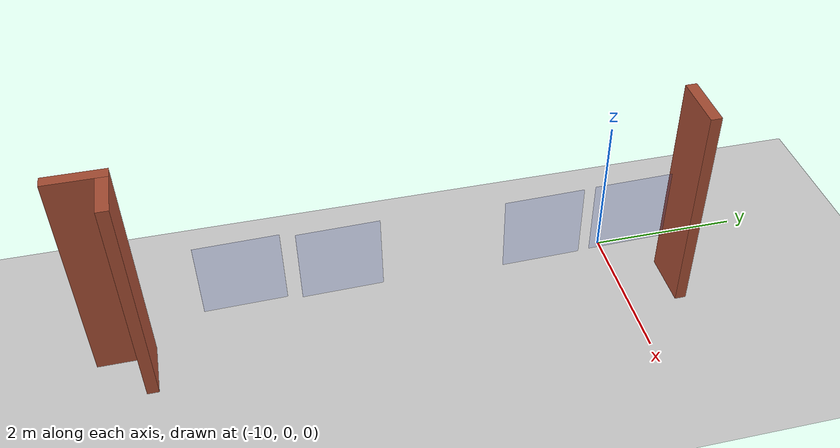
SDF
<sdf version="1.6">
 <world name="default">
  <model name="ground_plane">
   <static>1</static>
   <link name="link">
    <collision name="collision">
     <geometry><plane><normal>0 0 1</normal><size>100 100</size></plane></geometry>
     <surface><friction><ode><mu>100</mu><mu2>50</mu2></ode></friction></surface>
    </collision>
    <visual name="visual">
     <cast_shadows>0</cast_shadows>
     <geometry><plane><normal>0 0 1</normal><size>100 100</size></plane></geometry>
     <material>
      <script><uri>file://media/materials/scripts/gazebo.material</uri><name>Gazebo/Grey</name></script>
     </material>
    </visual>
   </link>
  </model>
  <model name="UNFRGS_INF_-_Predio_73">
   <pose>-0.02513 1.0401 -0.009 0 -0 0</pose>
   <link name="Wall_688">
    <collision name="Wall_688_Collision">
     <geometry><box><size>0.75 0.15 2.96</size></box></geometry>
     <pose>0 0 1.48 0 -0 0</pose>
    </collision>
    <visual name="Wall_688_Visual">
     <pose>0 0 1.48 0 -0 0</pose>
     <geometry><box><size>0.75 0.15 2.96</size></box></geometry>
     <material>
      <script><uri>file://media/materials/scripts/gazebo.material</uri><name>Gazebo/Bricks</name></script>
      <ambient>0.498039 0.498039 0.498039 1</ambient>
     </material>
     <meta><layer>0</layer></meta>
    </visual>
    <pose>-9.04913 -7.33422 0 0 -0 3.14159</pose>
   </link>
   <link name="Wall_689">
    <collision name="Wall_689_Collision">
     <geometry><box><size>0.75 0.15 2.96</size></box></geometry>
     <pose>0 0 1.48 0 -0 0</pose>
    </collision>
    <visual name="Wall_689_Visual">
     <pose>0 0 1.48 0 -0 0</pose>
     <geometry><box><size>0.75 0.15 2.96</size></box></geometry>
     <material>
      <script><uri>file://media/materials/scripts/gazebo.material</uri><name>Gazebo/Bricks</name></script>
      <ambient>0.498039 0.498039 0.498039 1</ambient>
     </material>
     <meta><layer>0</layer></meta>
    </visual>
    <pose>-9.34913 -7.63422 0 0 0 -1.5708</pose>
   </link>
   <link name="Wall_694">
    <collision name="Wall_694_Collision">
     <geometry><box><size>0.75 0.15 2.96</size></box></geometry>
     <pose>0 0 1.48 0 -0 0</pose>
    </collision>
    <visual name="Wall_694_Visual">
     <pose>0 0 1.48 0 -0 0</pose>
     <geometry><box><size>0.75 0.15 2.96</size></box></geometry>
     <material>
      <script><uri>file://media/materials/scripts/gazebo.material</uri><name>Gazebo/Bricks</name></script>
      <ambient>0.498039 0.498039 0.498039 1</ambient>
     </material>
     <meta><layer>0</layer></meta>
    </visual>
    <pose>-9.04913 -0.325219 0 0 -0 0</pose>
   </link>
   <static>1</static>
  </model>
  <model name="vidro_69">
   <pose>-8.81557 -0.164385 0.358399 0 0 -1.55</pose>
   <link name="Wall_2">
    <collision name="Wall_2_Collision">
     <geometry><box><size>1 0.001 1</size></box></geometry>
     <pose>0 0 1.25 0 -0 0</pose>
    </collision>
    <visual name="Wall_2_Visual">
     <pose>0 0 1.25 0 -0 0</pose>
     <transparency>0.8</transparency>
     <geometry><box><size>1 0.001 1</size></box></geometry>
     <material>
      <script><uri>file://media/materials/scripts/gazebo.material</uri><name>Gazebo/BlueTransparent</name></script>
      <ambient>0.1 0.1 0.1 0.1</ambient>
     </material>
     <meta><layer>0</layer></meta>
    </visual>
    <pose>0 0 0 0 -0 3.14159</pose>
   </link>
   <static>1</static>
  </model>
  <model name="vidro_70">
   <pose>-8.78639 -1.3074 0.354318 0 0 -1.55</pose>
   <link name="Wall_2">
    <collision name="Wall_2_Collision">
     <geometry><box><size>1 0.001 1</size></box></geometry>
     <pose>0 0 1.25 0 -0 0</pose>
    </collision>
    <visual name="Wall_2_Visual">
     <pose>0 0 1.25 0 -0 0</pose>
     <transparency>0.8</transparency>
     <geometry><box><size>1 0.001 1</size></box></geometry>
     <material>
      <script><uri>file://media/materials/scripts/gazebo.material</uri><name>Gazebo/BlueTransparent</name></script>
      <ambient>0.1 0.1 0.1 0.1</ambient>
     </material>
     <meta><layer>0</layer></meta>
    </visual>
    <pose>0 0 0 0 -0 3.14159</pose>
   </link>
   <static>1</static>
  </model>
  <model name="vidro_71">
   <pose>-8.82373 -3.81206 0.346206 0 0 -1.55</pose>
   <link name="Wall_2">
    <collision name="Wall_2_Collision">
     <geometry><box><size>1 0.001 1</size></box></geometry>
     <pose>0 0 1.25 0 -0 0</pose>
    </collision>
    <visual name="Wall_2_Visual">
     <pose>0 0 1.25 0 -0 0</pose>
     <transparency>0.8</transparency>
     <geometry><box><size>1 0.001 1</size></box></geometry>
     <material>
      <script><uri>file://media/materials/scripts/gazebo.material</uri><name>Gazebo/BlueTransparent</name></script>
      <ambient>0.1 0.1 0.1 0.1</ambient>
     </material>
     <meta><layer>0</layer></meta>
    </visual>
    <pose>0 0 0 0 -0 3.14159</pose>
   </link>
   <static>1</static>
  </model>
  <model name="vidro_72">
   <pose>-8.84247 -4.98796 0.360652 0 0 -1.55</pose>
   <link name="Wall_2">
    <collision name="Wall_2_Collision">
     <geometry><box><size>1 0.001 1</size></box></geometry>
     <pose>0 0 1.25 0 -0 0</pose>
    </collision>
    <visual name="Wall_2_Visual">
     <pose>0 0 1.25 0 -0 0</pose>
     <transparency>0.8</transparency>
     <geometry><box><size>1 0.001 1</size></box></geometry>
     <material>
      <script><uri>file://media/materials/scripts/gazebo.material</uri><name>Gazebo/BlueTransparent</name></script>
      <ambient>0.1 0.1 0.1 0.1</ambient>
     </material>
     <meta><layer>0</layer></meta>
    </visual>
    <pose>0 0 0 0 -0 3.14159</pose>
   </link>
   <static>1</static>
  </model>
 </world>
</sdf>
